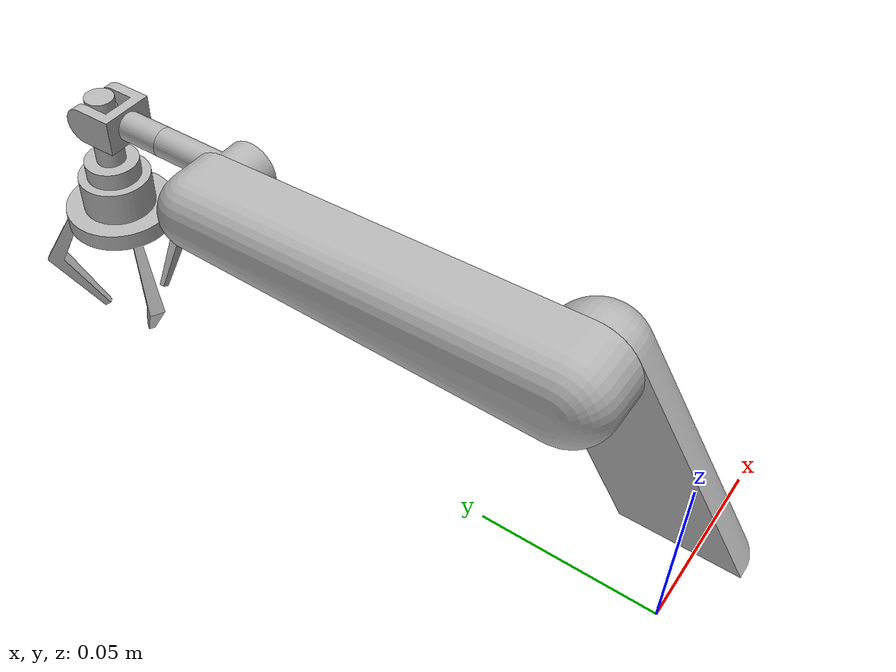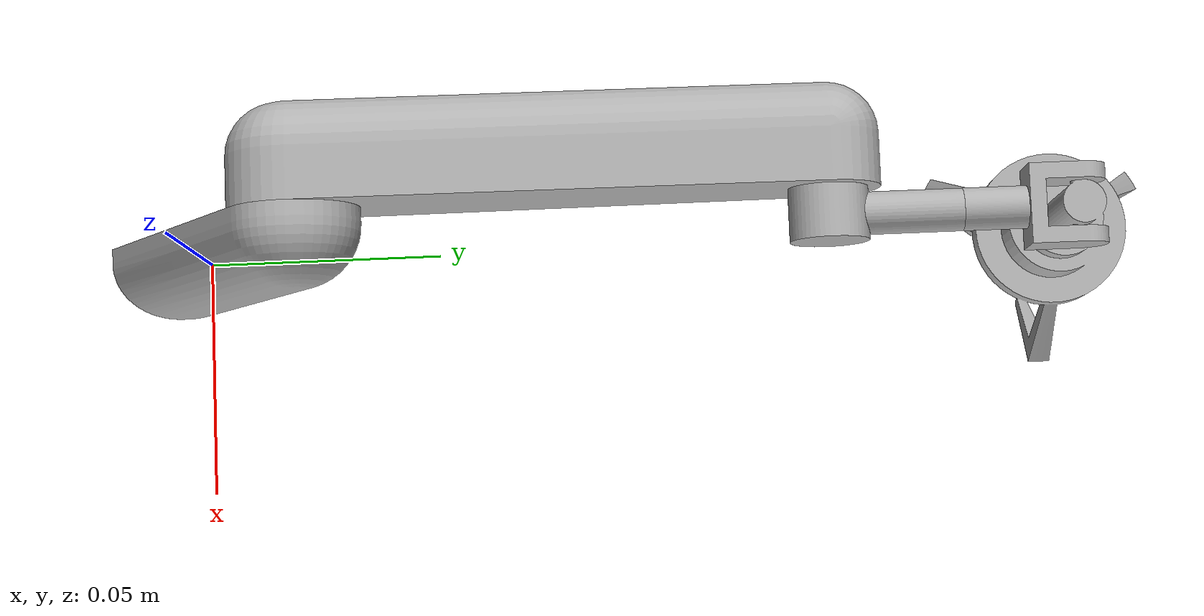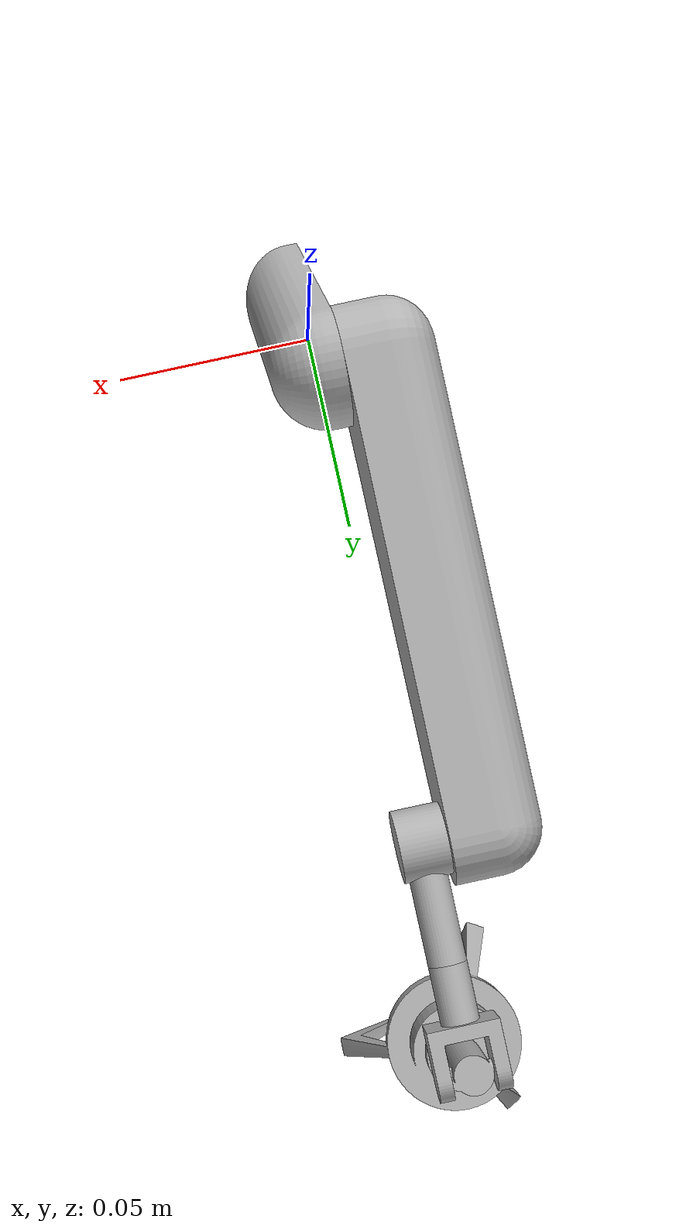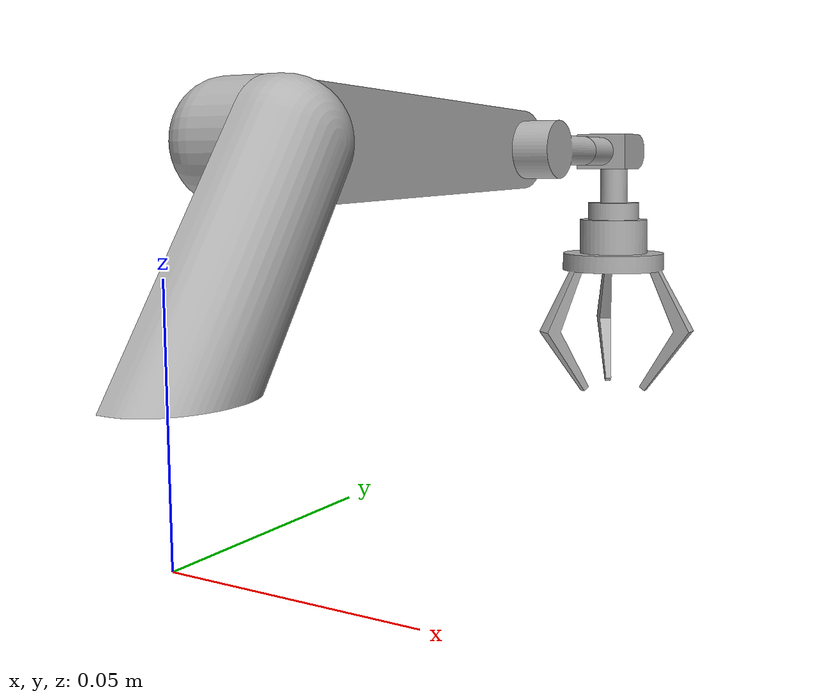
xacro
<?xml version="1.0" ?>
<robot name="arm" xmlns:xacro="http://www.ros.org/wiki/xacro">

<xacro:include filename="$(find arm_description)/urdf/materials.xacro" />
<xacro:include filename="$(find arm_description)/urdf/arm.trans" />
<xacro:include filename="$(find arm_description)/urdf/arm.gazebo" />
<link name="base_link">
  <inertial>
    <origin xyz="0.0 0.0 0.014999999999999998" rpy="0 0 0"/>
    <mass value="0.16646514073208918"/>
    <inertia ixx="2.2e-05" iyy="2.2e-05" izz="1.9e-05" ixy="0.0" iyz="0.0" ixz="0.0"/>
  </inertial>
  <visual>
    <origin xyz="0 0 0" rpy="0 0 0"/>
    <geometry>
      <mesh filename="package://arm_description/meshes/base_link.stl" scale="0.001 0.001 0.001"/>
    </geometry>
    <material name="silver"/>
  </visual>
  <collision>
    <origin xyz="0 0 0" rpy="0 0 0"/>
    <geometry>
      <mesh filename="package://arm_description/meshes/base_link.stl" scale="0.001 0.001 0.001"/>
    </geometry>
  </collision>
</link>

<link name="link_2_1">
  <inertial>
    <origin xyz="0.009446133862516259 0.01473394660867319 0.02536381161509462" rpy="0 0 0"/>
    <mass value="0.14854586912417742"/>
    <inertia ixx="5.3e-05" iyy="3.6e-05" izz="2.3e-05" ixy="-3e-06" iyz="-1.9e-05" ixz="-3e-06"/>
  </inertial>
  <visual>
    <origin xyz="-0.0 -0.0 -0.03" rpy="0 0 0"/>
    <geometry>
      <mesh filename="package://arm_description/meshes/link_2_1.stl" scale="0.001 0.001 0.001"/>
    </geometry>
    <material name="silver"/>
  </visual>
  <collision>
    <origin xyz="-0.0 -0.0 -0.03" rpy="0 0 0"/>
    <geometry>
      <mesh filename="package://arm_description/meshes/link_2_1.stl" scale="0.001 0.001 0.001"/>
    </geometry>
  </collision>
</link>

<link name="link_3_1">
  <inertial>
    <origin xyz="-0.0011482717786308804 0.04178333222088096 0.02198043869257303" rpy="0 0 0"/>
    <mass value="0.37330887659995127"/>
    <inertia ixx="0.000424" iyy="0.000128" izz="0.000341" ixy="-6e-05" iyz="-0.000167" ixz="-3.3e-05"/>
  </inertial>
  <visual>
    <origin xyz="-0.005459 -0.028057 -0.07309" rpy="0 0 0"/>
    <geometry>
      <mesh filename="package://arm_description/meshes/link_3_1.stl" scale="0.001 0.001 0.001"/>
    </geometry>
    <material name="silver"/>
  </visual>
  <collision>
    <origin xyz="-0.005459 -0.028057 -0.07309" rpy="0 0 0"/>
    <geometry>
      <mesh filename="package://arm_description/meshes/link_3_1.stl" scale="0.001 0.001 0.001"/>
    </geometry>
  </collision>
</link>

<link name="link_4_1">
  <inertial>
    <origin xyz="0.005913154732798562 0.004212584932936622 0.0012457507370098736" rpy="0 0 0"/>
    <mass value="0.020886768815985914"/>
    <inertia ixx="2e-06" iyy="0.0" izz="2e-06" ixy="-0.0" iyz="-0.0" ixz="-0.0"/>
  </inertial>
  <visual>
    <origin xyz="-0.022271 -0.114472 -0.120523" rpy="0 0 0"/>
    <geometry>
      <mesh filename="package://arm_description/meshes/link_4_1.stl" scale="0.001 0.001 0.001"/>
    </geometry>
    <material name="silver"/>
  </visual>
  <collision>
    <origin xyz="-0.022271 -0.114472 -0.120523" rpy="0 0 0"/>
    <geometry>
      <mesh filename="package://arm_description/meshes/link_4_1.stl" scale="0.001 0.001 0.001"/>
    </geometry>
  </collision>
</link>

<link name="link_5_1">
  <inertial>
    <origin xyz="0.0025203649543155404 0.012940636275291018 0.0031142660797569277" rpy="0 0 0"/>
    <mass value="0.013414138622764766"/>
    <inertia ixx="1e-06" iyy="0.0" izz="1e-06" ixy="-0.0" iyz="-0.0" ixz="-0.0"/>
  </inertial>
  <visual>
    <origin xyz="-0.031829 -0.137397 -0.126275" rpy="0 0 0"/>
    <geometry>
      <mesh filename="package://arm_description/meshes/link_5_1.stl" scale="0.001 0.001 0.001"/>
    </geometry>
    <material name="silver"/>
  </visual>
  <collision>
    <origin xyz="-0.031829 -0.137397 -0.126275" rpy="0 0 0"/>
    <geometry>
      <mesh filename="package://arm_description/meshes/link_5_1.stl" scale="0.001 0.001 0.001"/>
    </geometry>
  </collision>
</link>

<link name="link_6_1">
  <inertial>
    <origin xyz="0.0016823449229372497 0.009541638695106242 0.0009571064143839569" rpy="0 0 0"/>
    <mass value="0.012973731786368297"/>
    <inertia ixx="1e-06" iyy="0.0" izz="1e-06" ixy="-0.0" iyz="-0.0" ixz="-0.0"/>
  </inertial>
  <visual>
    <origin xyz="-0.03592 -0.158413 -0.131336" rpy="0 0 0"/>
    <geometry>
      <mesh filename="package://arm_description/meshes/link_6_1.stl" scale="0.001 0.001 0.001"/>
    </geometry>
    <material name="silver"/>
  </visual>
  <collision>
    <origin xyz="-0.03592 -0.158413 -0.131336" rpy="0 0 0"/>
    <geometry>
      <mesh filename="package://arm_description/meshes/link_6_1.stl" scale="0.001 0.001 0.001"/>
    </geometry>
  </collision>
</link>

<link name="link_7_1">
  <inertial>
    <origin xyz="0.0021602717847927777 0.012252696926439377 0.0012285219298893146" rpy="0 0 0"/>
    <mass value="0.049740769711317204"/>
    <inertia ixx="9e-06" iyy="7e-06" izz="9e-06" ixy="-0.0" iyz="-0.0" ixz="-0.0"/>
  </inertial>
  <visual>
    <origin xyz="-0.039375 -0.178014 -0.133302" rpy="0 0 0"/>
    <geometry>
      <mesh filename="package://arm_description/meshes/link_7_1.stl" scale="0.001 0.001 0.001"/>
    </geometry>
    <material name="silver"/>
  </visual>
  <collision>
    <origin xyz="-0.039375 -0.178014 -0.133302" rpy="0 0 0"/>
    <geometry>
      <mesh filename="package://arm_description/meshes/link_7_1.stl" scale="0.001 0.001 0.001"/>
    </geometry>
  </collision>
</link>

<joint name="Rev1" type="continuous">
  <origin xyz="0.0 0.0 0.03" rpy="0 0 0"/>
  <parent link="base_link"/>
  <child link="link_2_1"/>
  <axis xyz="0.0 0.0 1.0"/>
</joint>

<joint name="Rev2" type="continuous">
  <origin xyz="0.005459 0.028057 0.04309" rpy="0 0 0"/>
  <parent link="link_2_1"/>
  <child link="link_3_1"/>
  <axis xyz="0.981595 -0.190972 -0.0"/>
</joint>

<joint name="Rev3" type="continuous">
  <origin xyz="0.016812 0.086415 0.047433" rpy="0 0 0"/>
  <parent link="link_3_1"/>
  <child link="link_4_1"/>
  <axis xyz="0.981595 -0.190972 -0.0"/>
</joint>

<joint name="Rev4" type="continuous">
  <origin xyz="0.009558 0.022925 0.005752" rpy="0 0 0"/>
  <parent link="link_4_1"/>
  <child link="link_5_1"/>
  <axis xyz="0.185838 0.955208 0.23031"/>
</joint>

<joint name="Rev5" type="continuous">
  <origin xyz="0.004091 0.021016 0.005061" rpy="0 0 0"/>
  <parent link="link_5_1"/>
  <child link="link_6_1"/>
  <axis xyz="-0.978932 0.159811 0.127091"/>
</joint>

<joint name="Rev6" type="continuous">
  <origin xyz="0.003455 0.019601 0.001966" rpy="0 0 0"/>
  <parent link="link_6_1"/>
  <child link="link_7_1"/>
  <axis xyz="0.172753 0.98005 0.098278"/>
</joint>

</robot>

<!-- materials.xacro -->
<robot name="arm" xmlns:xacro="http://www.ros.org/wiki/xacro" >

<material name="silver">
  <color rgba="0.700 0.700 0.700 1.000"/>
</material>

<material name="black">
  <color rgba="0.0 0.0 0.0 1.0"/>
</material>

<material name="white">
  <color rgba="1.0 1.0 1.0 1.0"/>
</material>

<material name="red">
  <color rgba="0.8 0.0 0.0 1.0"/>
</material>

<material name="blue">
  <color rgba="0.0 0.0 0.8 1.0"/>
</material>

<material name="green">
  <color rgba="0.0 0.8 0.0 1.0"/>
</material>

<material name="grey">
  <color rgba="0.5 0.5 0.5 1.0"/>
</material>

<material name="orange">
  <color rgba="${255/255} ${108/255} ${10/255} 1.0"/>
</material>

<material name="brown">
  <color rgba="${222/255} ${207/255} ${195/255} 1.0"/>
</material>

<material name="yellow">
  <color rgba="${232/255} ${173/255} ${35/255} 1.0"/>
</material>

</robot>

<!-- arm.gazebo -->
<robot name="arm" xmlns:xacro="http://www.ros.org/wiki/xacro" >

<xacro:property name="body_color" value="Gazebo/Silver" />

<gazebo>
  <plugin name="control" filename="libgazebo_ros_control.so"/>
</gazebo>
<gazebo reference="base_link">
  <material>${body_color}</material>
  <mu1>0.2</mu1>
  <mu2>0.2</mu2>
  <selfCollide>true</selfCollide>
  <gravity>true</gravity>
</gazebo>

<gazebo reference="link_2_1">
  <material>${body_color}</material>
  <mu1>0.2</mu1>
  <mu2>0.2</mu2>
  <selfCollide>true</selfCollide>
</gazebo>

<gazebo reference="link_3_1">
  <material>${body_color}</material>
  <mu1>0.2</mu1>
  <mu2>0.2</mu2>
  <selfCollide>true</selfCollide>
</gazebo>

<gazebo reference="link_4_1">
  <material>${body_color}</material>
  <mu1>0.2</mu1>
  <mu2>0.2</mu2>
  <selfCollide>true</selfCollide>
</gazebo>

<gazebo reference="link_5_1">
  <material>${body_color}</material>
  <mu1>0.2</mu1>
  <mu2>0.2</mu2>
  <selfCollide>true</selfCollide>
</gazebo>

<gazebo reference="link_6_1">
  <material>${body_color}</material>
  <mu1>0.2</mu1>
  <mu2>0.2</mu2>
  <selfCollide>true</selfCollide>
</gazebo>

<gazebo reference="link_7_1">
  <material>${body_color}</material>
  <mu1>0.2</mu1>
  <mu2>0.2</mu2>
  <selfCollide>true</selfCollide>
</gazebo>

</robot>
